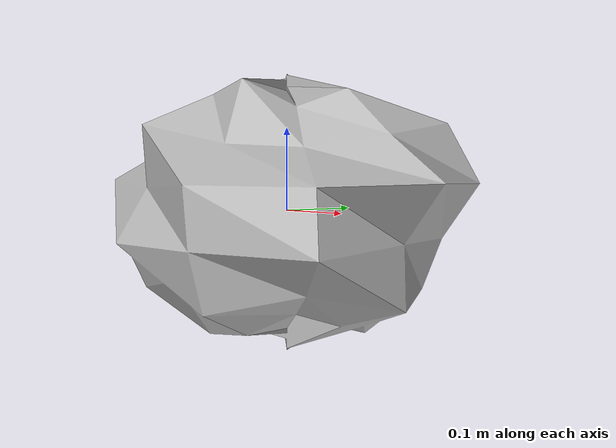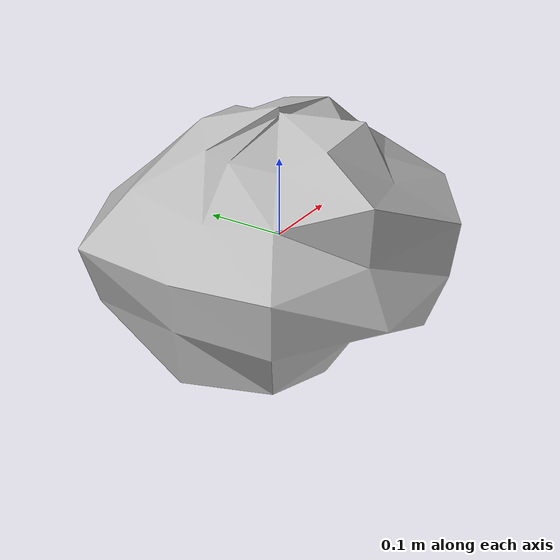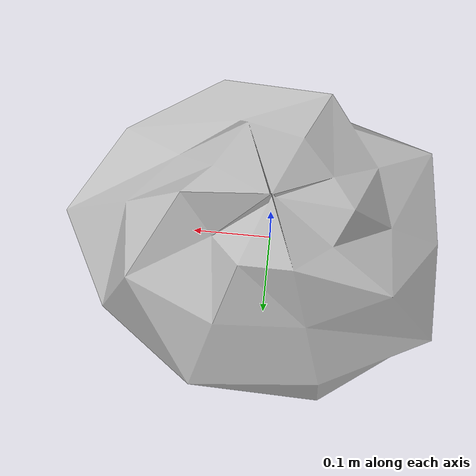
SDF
<?xml version="1.0" ?>
<sdf version="1.9">
  <model name="rock">
    <link name="l">
      <inertial><mass>12</mass><inertia><ixx>0.3200</ixx><ixy>0</ixy><ixz>0</ixz><iyy>0.3200</iyy>
        <iyz>0</iyz><izz>0.3200</izz></inertia></inertial>
      <collision name="c"><geometry><box><size>0.420 0.340 0.260</size></box>
        </geometry></collision>
      <visual name="v"><geometry><mesh><uri>model://lm_rock/meshes/rock.obj</uri>
        <scale>1.0 1.0 1.0</scale></mesh></geometry></visual>
    </link>
  </model>
</sdf>
